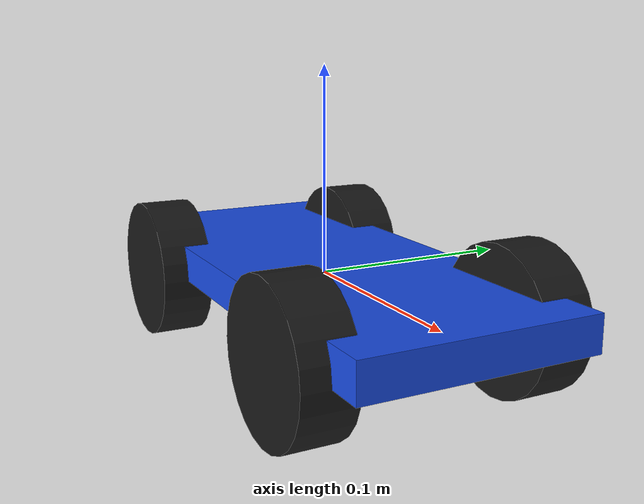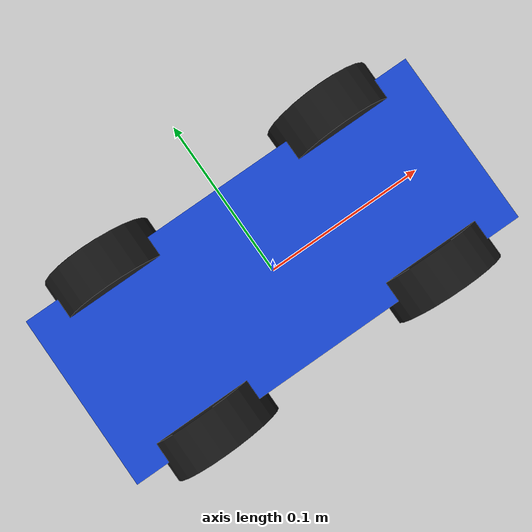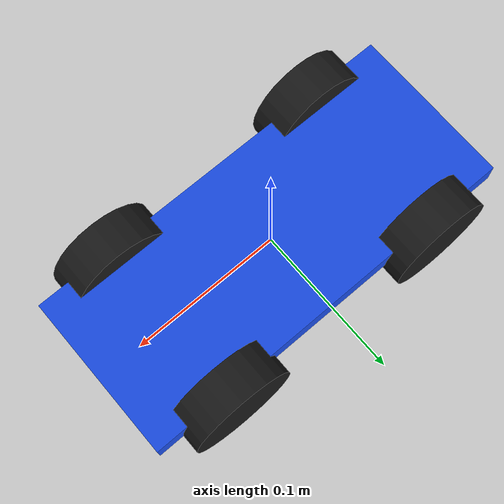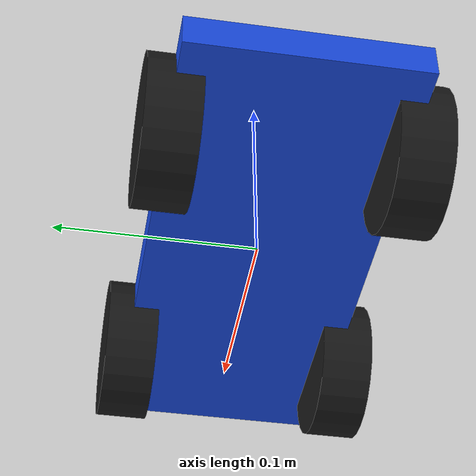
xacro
<?xml version="1.0"?>
<robot name="diff_car" xmlns:xacro="http://www.ros.org/wiki/xacro">

  <!-- 参数 -->
  <xacro:property name="wheel_radius" value="0.035"/>
  <xacro:property name="wheel_width"  value="0.025"/>
  <xacro:property name="base_length"  value="0.26"/>
  <xacro:property name="base_width"   value="0.11"/>
  <xacro:property name="base_height"  value="0.017"/>

  <!-- base_link -->
  <link name="base_link">
    <visual>
      <geometry>
        <box size="${base_length} ${base_width} ${base_height}"/>
      </geometry>
      <material name="blue">
        <color rgba="0.1 0.3 0.9 1.0"/>
      </material>
    </visual>
    <collision>
      <geometry>
        <box size="${base_length} ${base_width} ${base_height}"/>
      </geometry>
    </collision>
    <inertial>
      <mass value="0.5"/>
      <inertia ixx="0.000517" ixy="0.0"    ixz="0.0"
               iyy="0.00283"  iyz="0.0"
               izz="0.00332"/>
    </inertial>
  </link>

  <!-- 正确格式的 xacro:macro -->
  <xacro:macro name="wheel" params="name x y">
    <link name="${name}">
      <visual>
        <origin rpy="1.5708 0 0"/> <!-- 轮子横放 -->
        <geometry>
          <cylinder radius="${wheel_radius}" length="${wheel_width}"/>
        </geometry>
        <material name="black">
          <color rgba="0.1 0.1 0.1 1"/>
        </material>
      </visual>

      <collision>
        <origin rpy="1.5708 0 0"/>
        <geometry>
          <cylinder radius="${wheel_radius}" length="${wheel_width}"/>
        </geometry>
        <surface>
          <contact>
            <ode/>
          </contact>
          <friction>
            <ode>
              <!-- 摩擦系数 -->
              <mu>0.7</mu>
              <mu2>0.7</mu2>
            </ode>
          </friction>
        </surface>
      </collision>

      <inertial>
        <mass value="0.025"/>
        <inertia ixx="9.0e-06"  ixy="0.0"    ixz="0.0"
                 iyy="9.0e-06"  iyz="0.0"
                 izz="1.53e-05"/>
      </inertial>
    </link>

    <joint name="${name}_joint" type="continuous">
      <parent link="base_link"/>
      <child link="${name}"/>
      <origin xyz="${x} ${y} -${base_height/2}" rpy="0 0 0"/>
      <axis xyz="0 1 0"/> <!-- 轮子绕Y轴转动 -->
    </joint>
  </xacro:macro>

  <!-- 四个轮子 -->
  <xacro:wheel name="left_front_wheel"
               x="${0.3 * base_length}"
               y="${ base_width / 2}" />

  <xacro:wheel name="right_front_wheel"
               x="${0.3 * base_length}"
               y="${-base_width / 2}" />

  <xacro:wheel name="left_behind_wheel"
               x="${-0.3 * base_length}"
               y="${ base_width / 2}" />

  <xacro:wheel name="right_behind_wheel"
               x="${-0.3 * base_length}"
               y="${-base_width / 2}" />

  <!-- ros2_control 硬件 + 关节接口声明 -->
  <ros2_control name="diff_car_system" type="system">
    <hardware>
      <!-- 使用 Gazebo 提供的虚拟硬件 -->
      <plugin>gazebo_ros2_control/GazeboSystem</plugin>
    </hardware>

    <!-- 每个轮子关节都声明 velocity 接口 -->
    <joint name="left_front_wheel_joint">
      <command_interface name="velocity"/>
      <state_interface name="position"/>
      <state_interface name="velocity"/>
    </joint>

    <joint name="right_front_wheel_joint">
      <command_interface name="velocity"/>
      <state_interface name="position"/>
      <state_interface name="velocity"/>
    </joint>

    <joint name="left_behind_wheel_joint">
      <command_interface name="velocity"/>
      <state_interface name="position"/>
      <state_interface name="velocity"/>
    </joint>

    <joint name="right_behind_wheel_joint">
      <command_interface name="velocity"/>
      <state_interface name="position"/>
      <state_interface name="velocity"/>
    </joint>
  </ros2_control>

  <!-- Gazebo 里加载 ros2_control 插件 -->
  <gazebo>
    <plugin filename="libgazebo_ros2_control.so" name="gazebo_ros2_control">
      <robot_sim_type>gazebo_ros2_control/GazeboSystem</robot_sim_type>

      <!-- 告诉它 robot_description 在哪个参数里、在哪个节点 -->
      <robot_param>robot_description</robot_param>
      <robot_param_node>robot_state_publisher</robot_param_node>

      <!-- 告诉它 ros2_control 的配置 YAML 放在哪 -->
      <robot_namespace>/diff_car</robot_namespace>
      <parameters>$(find botlab_diff_description)/config/diff_car_ros2_control.yaml</parameters>
    </plugin>
  </gazebo>

</robot>
